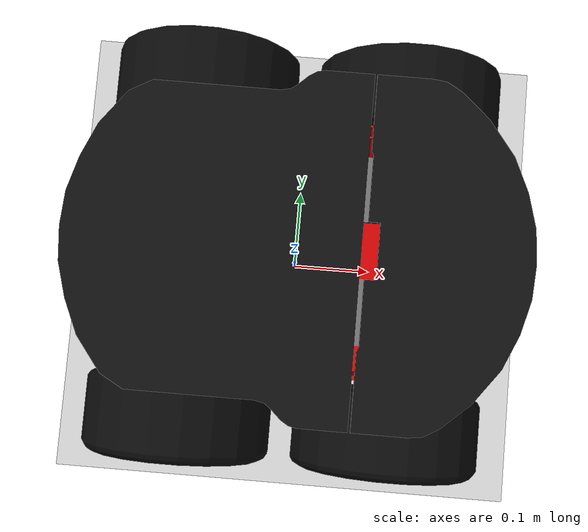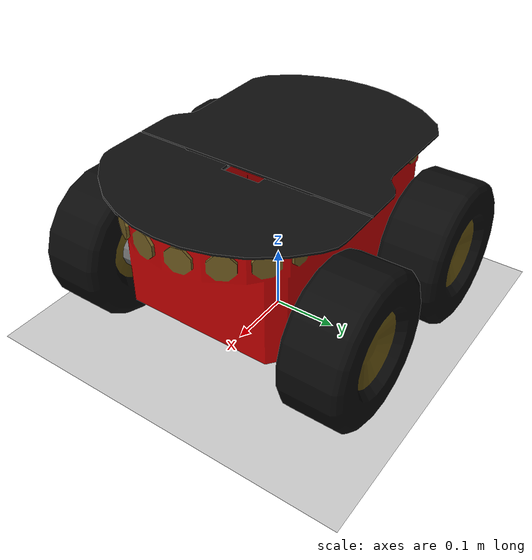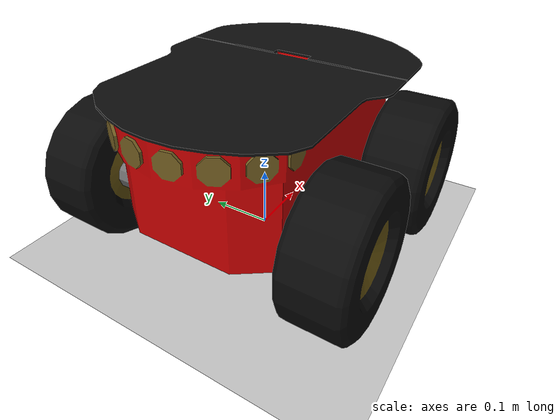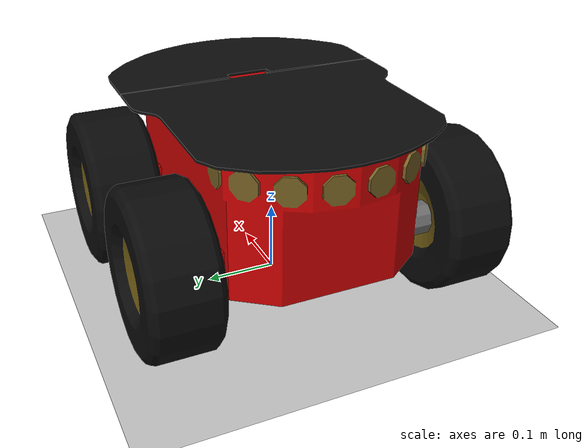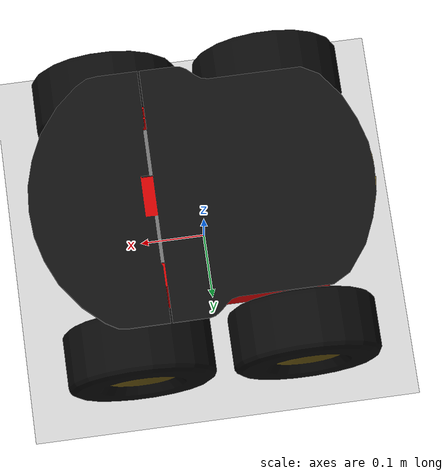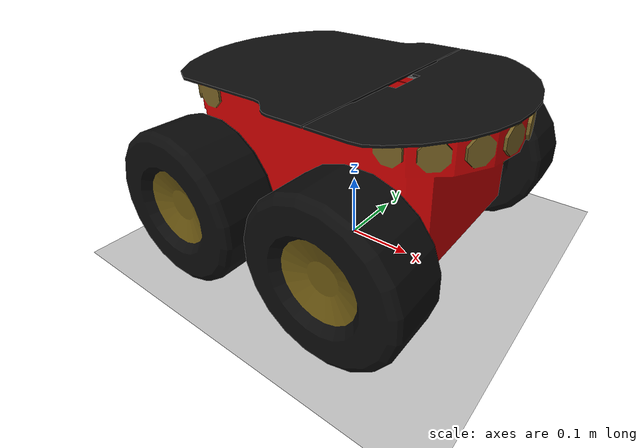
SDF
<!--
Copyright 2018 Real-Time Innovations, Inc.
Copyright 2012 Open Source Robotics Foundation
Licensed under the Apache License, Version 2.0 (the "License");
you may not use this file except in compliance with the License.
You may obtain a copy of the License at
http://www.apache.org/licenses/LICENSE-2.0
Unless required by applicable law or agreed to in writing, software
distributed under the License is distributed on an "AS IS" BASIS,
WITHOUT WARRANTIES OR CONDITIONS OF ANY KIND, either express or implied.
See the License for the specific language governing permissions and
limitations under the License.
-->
<!--
    Copied from: https://bitbucket.org/osrf/gazebo_models/src/c7b4d0ba1ea5d66d03b292f7bef8dc174755aed8/pioneer3at/model.sdf
-->

<?xml version="1.0" ?>
<sdf version='1.6'>
  <world name='default'>
    <light name='sun' type='directional'>
      <cast_shadows>1</cast_shadows>
      <pose>0 0 10 0 -0 0</pose>
      <diffuse>0.8 0.8 0.8 1</diffuse>
      <specular>0.2 0.2 0.2 1</specular>
      <attenuation>
        <range>1000</range>
        <constant>0.9</constant>
        <linear>0.01</linear>
        <quadratic>0.001</quadratic>
      </attenuation>
      <direction>0.5 0.1 -0.9</direction>
    </light>
  <model name='ground_plane'>
      <static>1</static>
      <link name='link'>
        <collision name='collision'>
          <geometry>
            <plane>
              <normal>0 0 1</normal>
              <size>100 100</size>
            </plane>
          </geometry>
          <surface>
            <friction>
              <ode>
                <mu>100</mu>
                <mu2>50</mu2>
              </ode>
            </friction>
            <bounce/>
            <contact>
              <ode/>
            </contact>
          </surface>
          <max_contacts>10</max_contacts>
        </collision>
        <visual name='visual'>
          <cast_shadows>0</cast_shadows>
          <geometry>
            <plane>
              <normal>0 0 1</normal>
              <size>100 100</size>
            </plane>
          </geometry>
          <material>
            <script>
              <uri>file://media/materials/scripts/gazebo.material</uri>
              <name>Gazebo/Grey</name>
            </script>
          </material>
        </visual>
        <velocity_decay>
          <linear>0</linear>
          <angular>0</angular>
        </velocity_decay>
        <self_collide>0</self_collide>
        <kinematic>0</kinematic>
        <gravity>1</gravity>
      </link>
    </model>

  <model name="pioneer3at">
      <pose>0 0 0.180 0 0 0</pose>
      <static>false</static>
      <link name="chassis">
        <inertial>
          <mass>14.0</mass>
          <inertia>
            <ixx>0.147116667</ixx>
            <ixy>0.0</ixy>
            <ixz>0.0</ixz>
            <iyy>0.334951167</iyy>
            <iyz>0.0</iyz>
            <izz>0.3978345</izz>
          </inertia>
        </inertial>
        <collision name="collision">
          <geometry>
            <box>
              <size>0.501 0.300 0.19</size>
            </box>
          </geometry>
        </collision>
        <visual name="visual">
          <geometry>
            <mesh>
              <uri>model://pioneer3at/meshes/chassis.dae</uri>
            </mesh>
          </geometry>
        </visual>
      </link>
      <link name="right_front_wheel">
        <pose>0.125 -0.201 -0.06 1.5707 0 0</pose>

        <inertial>
          <mass>1.5</mass>
          <inertia>
            <ixx>0.005240625</ixx>
            <iyy>0.005240625</iyy>
            <izz>0.009075</izz>
            <ixy>0</ixy>
            <ixz>0</ixz>
            <iyz>0</iyz>
          </inertia>
        </inertial>

        <collision name="collision">
          <geometry>
            <cylinder>
              <radius>0.110</radius>
              <length>0.075</length>
            </cylinder>
          </geometry>
          <surface>
            <friction>
              <ode>
                <mu>1</mu>
                <mu2>1</mu2>
                <slip1>0</slip1>
                <slip2>0</slip2>
              </ode>
            </friction>
          </surface>
        </collision>
        <visual name="visual">
          <geometry>
            <mesh>
              <uri>model://pioneer3at/meshes/wheel.dae</uri>
            </mesh>
          </geometry>
        </visual>
      </link>
      <link name="left_front_wheel">
        <pose>0.125 0.201 -0.06 1.5707 0 0</pose>

        <inertial>
          <mass>1.5</mass>
          <inertia>
            <ixx>0.005240625</ixx>
            <iyy>0.005240625</iyy>
            <izz>0.009075</izz>
            <ixy>0</ixy>
            <ixz>0</ixz>
            <iyz>0</iyz>
          </inertia>
        </inertial>

        <collision name="collision">
          <geometry>
            <cylinder>
              <radius>0.110</radius>
              <length>0.075</length>
            </cylinder>
          </geometry>
          <surface>
            <friction>
              <ode>
                <mu>1</mu>
                <mu2>1</mu2>
                <slip1>0</slip1>
                <slip2>0</slip2>
              </ode>
            </friction>
          </surface>
        </collision>
        <visual name="visual">
          <geometry>
            <mesh>
              <uri>model://pioneer3at/meshes/wheel.dae</uri>
            </mesh>
          </geometry>
        </visual>
      </link>
      <link name="right_rear_wheel">
        <pose>-0.125 -0.201 -0.06 1.5707 0 0</pose>

        <inertial>
          <mass>1.5</mass>
          <inertia>
            <ixx>0.005240625</ixx>
            <iyy>0.005240625</iyy>
            <izz>0.009075</izz>
            <ixy>0</ixy>
            <ixz>0</ixz>
            <iyz>0</iyz>
          </inertia>
        </inertial>

        <collision name="collision">
          <geometry>
            <cylinder>
              <radius>0.110</radius>
              <length>0.075</length>
            </cylinder>
          </geometry>
          <surface>
            <friction>
              <ode>
                <mu>1</mu>
                <mu2>1</mu2>
                <slip1>0</slip1>
                <slip2>0</slip2>
              </ode>
            </friction>
          </surface>
        </collision>
        <visual name="visual">
          <geometry>
            <mesh>
              <uri>model://pioneer3at/meshes/wheel.dae</uri>
            </mesh>
          </geometry>
        </visual>
      </link>
      <link name="left_rear_wheel">
        <pose>-0.125 0.201 -0.06 1.5707 0 0</pose>

        <inertial>
          <mass>1.5</mass>
          <inertia>
            <ixx>0.005240625</ixx>
            <iyy>0.005240625</iyy>
            <izz>0.009075</izz>
            <ixy>0</ixy>
            <ixz>0</ixz>
            <iyz>0</iyz>
          </inertia>
        </inertial>

        <collision name="collision">
          <geometry>
            <cylinder>
              <radius>0.110</radius>
              <length>0.075</length>
            </cylinder>
          </geometry>
          <surface>
            <friction>
              <ode>
                <mu>1</mu>
                <mu2>1</mu2>
                <slip1>0</slip1>
                <slip2>0</slip2>
              </ode>
            </friction>
          </surface>
        </collision>
        <visual name="visual">
          <geometry>
            <mesh>
              <uri>model://pioneer3at/meshes/wheel.dae</uri>
            </mesh>
          </geometry>
        </visual>
      </link>
      <joint type="revolute" name="right_front">
        <pose>0 0 0 0 0 0</pose>
        <child>right_front_wheel</child>
        <parent>chassis</parent>
        <axis>
          <xyz>0 1 0</xyz>
          <use_parent_model_frame>true</use_parent_model_frame>
        </axis>
      </joint>
      <joint type="revolute" name="right_rear">
        <pose>0 0 0 0 0 0</pose>
        <child>right_rear_wheel</child>
        <parent>chassis</parent>
        <axis>
          <xyz>0 1 0</xyz>
          <use_parent_model_frame>true</use_parent_model_frame>
        </axis>
      </joint>
      <joint type="revolute" name="left_front">
        <pose>0 0 0 0 0 0</pose>
        <child>left_front_wheel</child>
        <parent>chassis</parent>
        <axis>
          <xyz>0 1 0</xyz>
          <use_parent_model_frame>true</use_parent_model_frame>
        </axis>
      </joint>
      <joint type="revolute" name="left_rear">
        <pose>0 0 0 0 0 0</pose>
        <child>left_rear_wheel</child>
        <parent>chassis</parent>
        <axis>
          <xyz>0 1 0</xyz>
          <use_parent_model_frame>true</use_parent_model_frame>
        </axis>
      </joint>
    <plugin name="SkidSteerDrivePlugin" filename="skid_steer_drive/libDdsSkidSteerDrivePlugin.so">
      <dds_domain_id>0</dds_domain_id>
      <topic_name_twist>cmd_vel</topic_name_twist>
      <topic_name_odometry>odom</topic_name_odometry>
      <topic_name_joint>joint</topic_name_joint>
      <right_front_joint>right_front</right_front_joint>
      <right_rear_joint>right_rear</right_rear_joint>
      <left_front_joint>left_front</left_front_joint>
      <left_rear_joint>left_rear</left_rear_joint>
      <wheel_separation>0.4</wheel_separation>
      <wheel_diameter>0.15</wheel_diameter>
      <wheel_torque>5.0</wheel_torque>
      <update_rate>2</update_rate>
      <covariance_x>0.0001</covariance_x>
      <covariance_y>0.0001</covariance_y>
      <covariance_yaw>0.01</covariance_yaw>
    </plugin>
  </model>
  </world>
</sdf>
